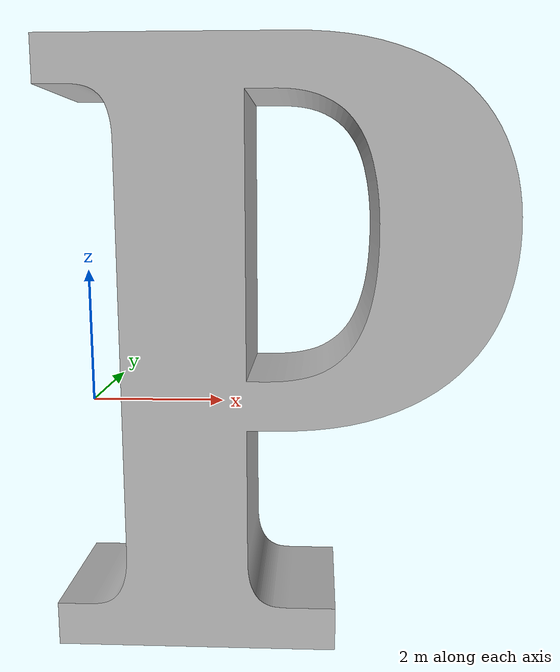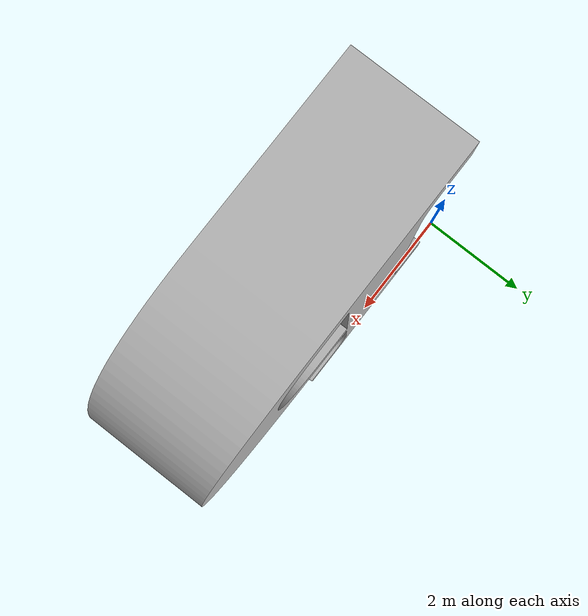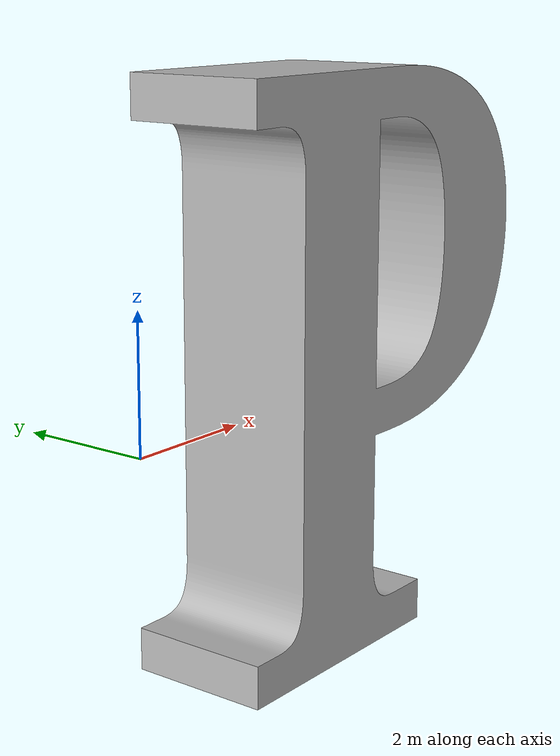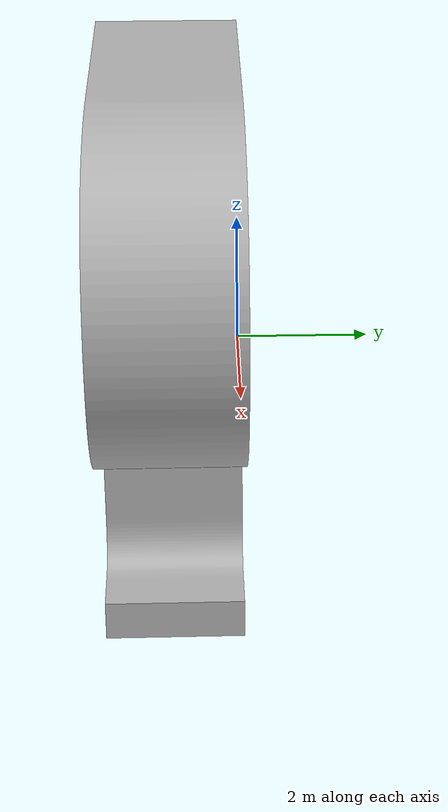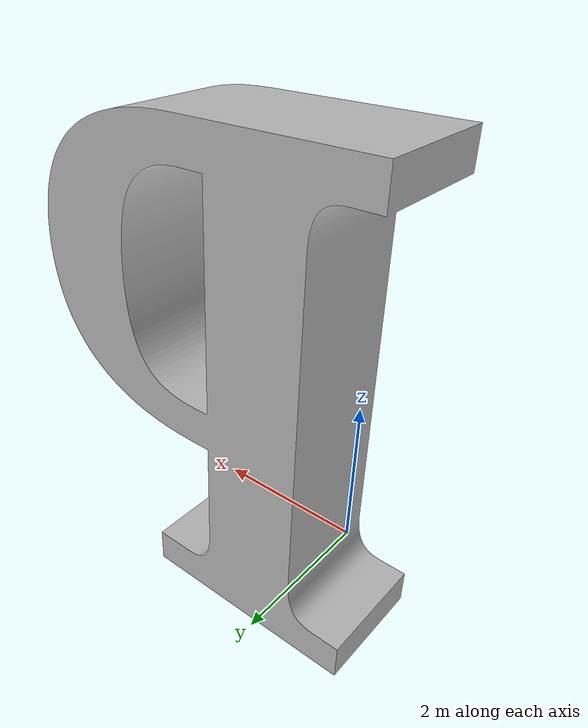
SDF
<sdf version='1.5'>
  <model name='text_P'>
    <link name='P'>
      <collision name='P_inertia_collision'>
        <pose frame=''>0 0 6.05 1.570796 -0 0</pose>
        <geometry>
          <mesh>
            <scale>0.2 0.2 0.2</scale>
            <uri>model://text_description/meshes/P.stl</uri>
          </mesh>
        </geometry>
        <surface>
          <contact>
            <ode>
              <min_depth>0.001</min_depth>
              <max_vel>0</max_vel>
            </ode>
          </contact>
          <friction>
            <ode/>
          </friction>
        </surface>
      </collision>
      <visual name='P_inertia_visual'>
        <pose frame=''>0 0 6.05 1.570796 -0 0</pose>
        <geometry>
          <mesh>
            <scale>0.2 0.2 0.2</scale>
            <uri>model://text_description/meshes/P.stl</uri>
          </mesh>
        </geometry>
      </visual>
      <kinematic>1</kinematic>
      <velocity_decay/>
    </link>
  </model>
</sdf>
